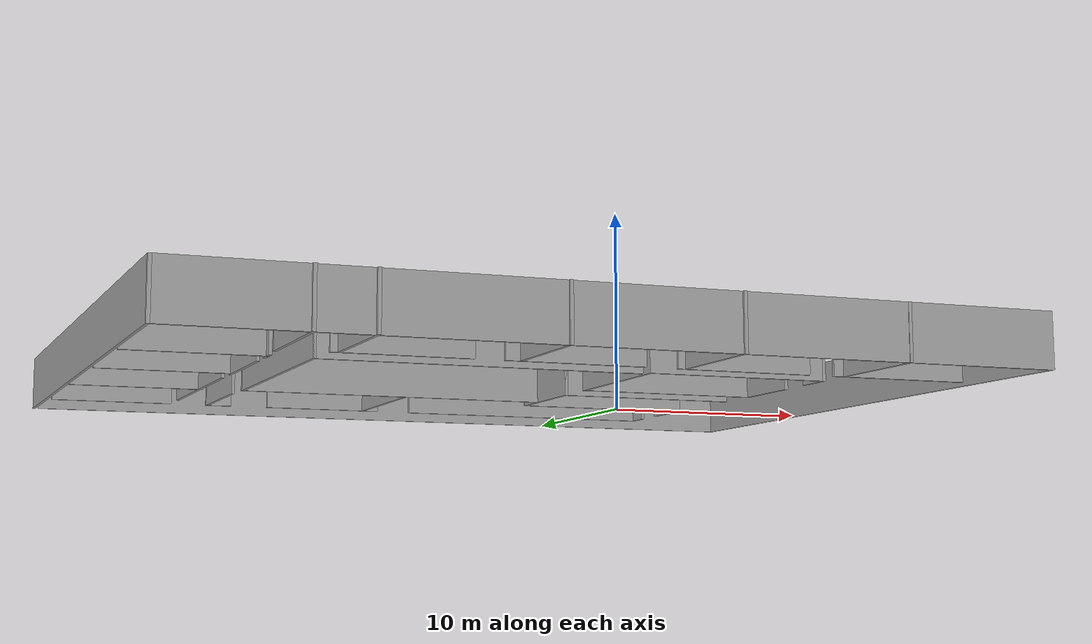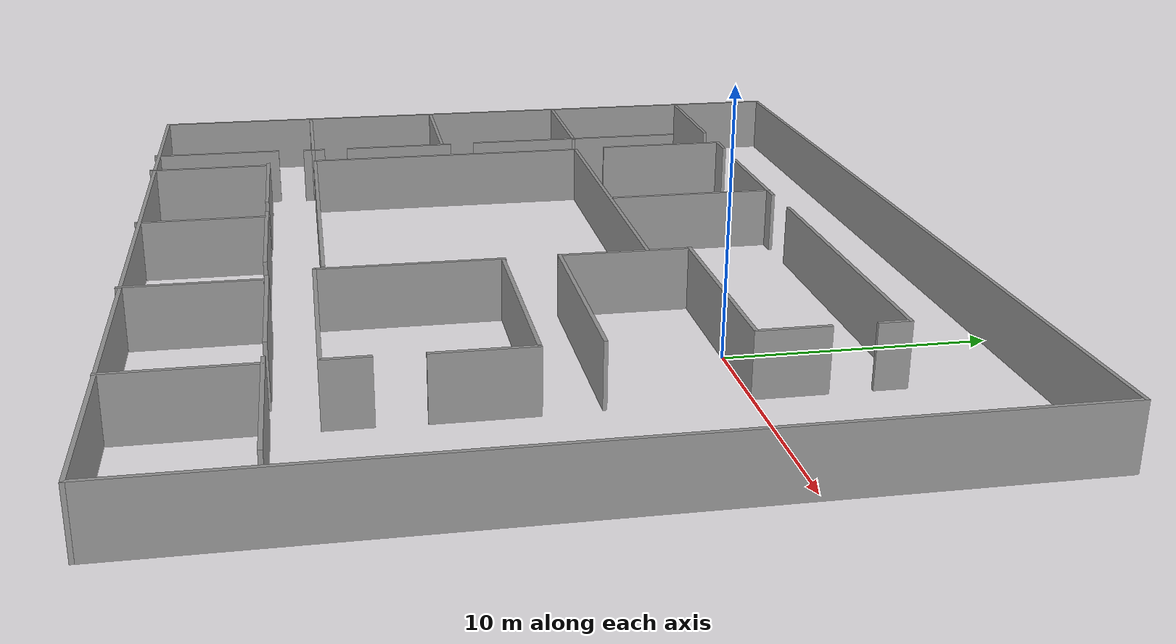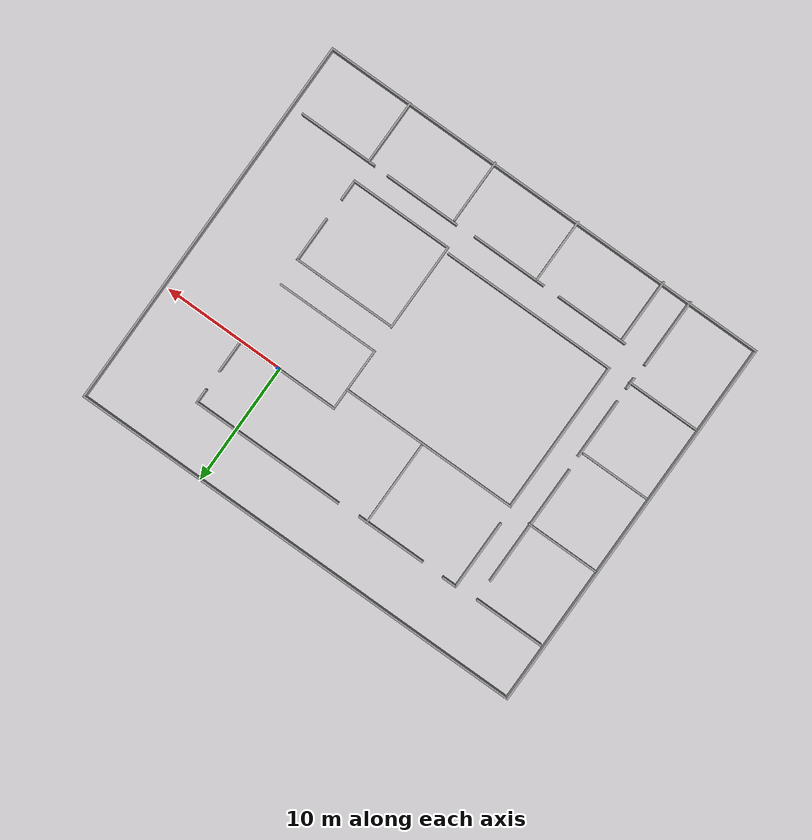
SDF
<?xml version='1.0'?>
<sdf version='1.7'>
  <model name='NMBE'>
    <pose>-8.57948 -5.7363 0 0 -0 0</pose>
    <link name='Wall_0'>
      <collision name='Wall_0_Collision'>
        <geometry>
          <box>
            <size>37.75 0.15 2.5</size>
          </box>
        </geometry>
        <pose>0 0 1.25 0 -0 0</pose>
      </collision>
      <visual name='Wall_0_Visual'>
        <pose>0 0 1.25 0 -0 0</pose>
        <geometry>
          <box>
            <size>37.75 0.15 2.5</size>
          </box>
        </geometry>
        <material>
          <script>
            <uri>file://media/materials/scripts/gazebo.material</uri>
            <name>Gazebo/Grey</name>
          </script>
          <ambient>1 1 1 1</ambient>
        </material>
        <meta>
          <layer>0</layer>
        </meta>
      </visual>
      <pose>0.125 15.6233 0 0 -0 0</pose>
    </link>
    <link name='Wall_1'>
      <collision name='Wall_1_Collision'>
        <geometry>
          <box>
            <size>31.25 0.15 2.5</size>
          </box>
        </geometry>
        <pose>0 0 1.25 0 -0 0</pose>
      </collision>
      <visual name='Wall_1_Visual'>
        <pose>0 0 1.25 0 -0 0</pose>
        <geometry>
          <box>
            <size>31.25 0.15 2.5</size>
          </box>
        </geometry>
        <material>
          <script>
            <uri>file://media/materials/scripts/gazebo.material</uri>
            <name>Gazebo/Grey</name>
          </script>
          <ambient>1 1 1 1</ambient>
        </material>
        <meta>
          <layer>0</layer>
        </meta>
      </visual>
      <pose>18.925 0.073336 0 0 -0 -1.5708</pose>
    </link>
    <link name='Wall_11'>
      <collision name='Wall_11_Collision'>
        <geometry>
          <box>
            <size>5.75 0.15 2.5</size>
          </box>
        </geometry>
        <pose>0 0 1.25 0 -0 0</pose>
      </collision>
      <visual name='Wall_11_Visual'>
        <pose>0 0 1.25 0 -0 0</pose>
        <geometry>
          <box>
            <size>5.75 0.15 2.5</size>
          </box>
        </geometry>
        <material>
          <script>
            <uri>file://media/materials/scripts/gazebo.material</uri>
            <name>Gazebo/Grey</name>
          </script>
          <ambient>1 1 1 1</ambient>
        </material>
        <meta>
          <layer>0</layer>
        </meta>
      </visual>
      <pose>-15.8691 -2.11714 0 0 -0 0</pose>
    </link>
    <link name='Wall_13'>
      <collision name='Wall_13_Collision'>
        <geometry>
          <box>
            <size>5.25 0.15 2.5</size>
          </box>
        </geometry>
        <pose>0 0 1.25 0 -0 0</pose>
      </collision>
      <visual name='Wall_13_Visual'>
        <pose>0 0 1.25 0 -0 0</pose>
        <geometry>
          <box>
            <size>5.25 0.15 2.5</size>
          </box>
        </geometry>
        <material>
          <script>
            <uri>file://media/materials/scripts/gazebo.material</uri>
            <name>Gazebo/Grey</name>
          </script>
          <ambient>1 1 1 1</ambient>
        </material>
        <meta>
          <layer>0</layer>
        </meta>
      </visual>
      <pose>12.0196 -12.952 0 0 -0 -1.5708</pose>
    </link>
    <link name='Wall_15'>
      <collision name='Wall_15_Collision'>
        <geometry>
          <box>
            <size>5.25 0.15 2.5</size>
          </box>
        </geometry>
        <pose>0 0 1.25 0 -0 0</pose>
      </collision>
      <visual name='Wall_15_Visual'>
        <pose>0 0 1.25 0 -0 0</pose>
        <geometry>
          <box>
            <size>5.25 0.15 2.5</size>
          </box>
        </geometry>
        <material>
          <script>
            <uri>file://media/materials/scripts/gazebo.material</uri>
            <name>Gazebo/Grey</name>
          </script>
          <ambient>1 1 1 1</ambient>
        </material>
        <meta>
          <layer>0</layer>
        </meta>
      </visual>
      <pose>4.45443 -13.0329 0 0 -0 -1.5708</pose>
    </link>
    <link name='Wall_17'>
      <collision name='Wall_17_Collision'>
        <geometry>
          <box>
            <size>5.25 0.15 2.5</size>
          </box>
        </geometry>
        <pose>0 0 1.25 0 -0 0</pose>
      </collision>
      <visual name='Wall_17_Visual'>
        <pose>0 0 1.25 0 -0 0</pose>
        <geometry>
          <box>
            <size>5.25 0.15 2.5</size>
          </box>
        </geometry>
        <material>
          <script>
            <uri>file://media/materials/scripts/gazebo.material</uri>
            <name>Gazebo/Grey</name>
          </script>
          <ambient>1 1 1 1</ambient>
        </material>
        <meta>
          <layer>0</layer>
        </meta>
      </visual>
      <pose>-2.94894 -13.0329 0 0 -0 -1.5708</pose>
    </link>
    <link name='Wall_19'>
      <collision name='Wall_19_Collision'>
        <geometry>
          <box>
            <size>5.25 0.15 2.5</size>
          </box>
        </geometry>
        <pose>0 0 1.25 0 -0 0</pose>
      </collision>
      <visual name='Wall_19_Visual'>
        <pose>0 0 1.25 0 -0 0</pose>
        <geometry>
          <box>
            <size>5.25 0.15 2.5</size>
          </box>
        </geometry>
        <material>
          <script>
            <uri>file://media/materials/scripts/gazebo.material</uri>
            <name>Gazebo/Grey</name>
          </script>
          <ambient>1 1 1 1</ambient>
        </material>
        <meta>
          <layer>0</layer>
        </meta>
      </visual>
      <pose>-10.5546 -13.0733 0 0 -0 -1.5708</pose>
    </link>
    <link name='Wall_2'>
      <collision name='Wall_2_Collision'>
        <geometry>
          <box>
            <size>38 0.15 2.5</size>
          </box>
        </geometry>
        <pose>0 0 1.25 0 -0 0</pose>
      </collision>
      <visual name='Wall_2_Visual'>
        <pose>0 0 1.25 0 -0 0</pose>
        <geometry>
          <box>
            <size>38 0.15 2.5</size>
          </box>
        </geometry>
        <material>
          <script>
            <uri>file://media/materials/scripts/gazebo.material</uri>
            <name>Gazebo/Grey</name>
          </script>
          <ambient>1 1 1 1</ambient>
        </material>
        <meta>
          <layer>0</layer>
        </meta>
      </visual>
      <pose>0 -15.4767 0 0 -0 3.14159</pose>
    </link>
    <link name='Wall_21'>
      <collision name='Wall_21_Collision'>
        <geometry>
          <box>
            <size>5.75 0.15 2.5</size>
          </box>
        </geometry>
        <pose>0 0 1.25 0 -0 0</pose>
      </collision>
      <visual name='Wall_21_Visual'>
        <pose>0 0 1.25 0 -0 0</pose>
        <geometry>
          <box>
            <size>5.75 0.15 2.5</size>
          </box>
        </geometry>
        <material>
          <script>
            <uri>file://media/materials/scripts/gazebo.material</uri>
            <name>Gazebo/Grey</name>
          </script>
          <ambient>1 1 1 1</ambient>
        </material>
        <meta>
          <layer>0</layer>
        </meta>
      </visual>
      <pose>-12.9819 -12.7974 0 0 -0 -1.5708</pose>
    </link>
    <link name='Wall_23'>
      <collision name='Wall_23_Collision'>
        <geometry>
          <box>
            <size>6 0.15 2.5</size>
          </box>
        </geometry>
        <pose>0 0 1.25 0 -0 0</pose>
      </collision>
      <visual name='Wall_23_Visual'>
        <pose>0 0 1.25 0 -0 0</pose>
        <geometry>
          <box>
            <size>6 0.15 2.5</size>
          </box>
        </geometry>
        <material>
          <script>
            <uri>file://media/materials/scripts/gazebo.material</uri>
            <name>Gazebo/Grey</name>
          </script>
          <ambient>1 1 1 1</ambient>
        </material>
        <meta>
          <layer>0</layer>
        </meta>
      </visual>
      <pose>-15.7612 -8.29828 0 0 -0 0</pose>
    </link>
    <link name='Wall_25'>
      <collision name='Wall_25_Collision'>
        <geometry>
          <box>
            <size>6.5 0.15 2.5</size>
          </box>
        </geometry>
        <pose>0 0 1.25 0 -0 0</pose>
      </collision>
      <visual name='Wall_25_Visual'>
        <pose>0 0 1.25 0 -0 0</pose>
        <geometry>
          <box>
            <size>6.5 0.15 2.5</size>
          </box>
        </geometry>
        <material>
          <script>
            <uri>file://media/materials/scripts/gazebo.material</uri>
            <name>Gazebo/Grey</name>
          </script>
          <ambient>1 1 1 1</ambient>
        </material>
        <meta>
          <layer>0</layer>
        </meta>
      </visual>
      <pose>14.7303 -10.3435 0 0 -0 0</pose>
    </link>
    <link name='Wall_27'>
      <collision name='Wall_27_Collision'>
        <geometry>
          <box>
            <size>6.25 0.15 2.5</size>
          </box>
        </geometry>
        <pose>0 0 1.25 0 -0 0</pose>
      </collision>
      <visual name='Wall_27_Visual'>
        <pose>0 0 1.25 0 -0 0</pose>
        <geometry>
          <box>
            <size>6.25 0.15 2.5</size>
          </box>
        </geometry>
        <material>
          <script>
            <uri>file://media/materials/scripts/gazebo.material</uri>
            <name>Gazebo/Grey</name>
          </script>
          <ambient>1 1 1 1</ambient>
        </material>
        <meta>
          <layer>0</layer>
        </meta>
      </visual>
      <pose>7.21071 -10.3031 0 0 -0 3.14159</pose>
    </link>
    <link name='Wall_29'>
      <collision name='Wall_29_Collision'>
        <geometry>
          <box>
            <size>6.25 0.15 2.5</size>
          </box>
        </geometry>
        <pose>0 0 1.25 0 -0 0</pose>
      </collision>
      <visual name='Wall_29_Visual'>
        <pose>0 0 1.25 0 -0 0</pose>
        <geometry>
          <box>
            <size>6.25 0.15 2.5</size>
          </box>
        </geometry>
        <material>
          <script>
            <uri>file://media/materials/scripts/gazebo.material</uri>
            <name>Gazebo/Grey</name>
          </script>
          <ambient>1 1 1 1</ambient>
        </material>
        <meta>
          <layer>0</layer>
        </meta>
      </visual>
      <pose>-0.525098 -10.384 0 0 -0 0</pose>
    </link>
    <link name='Wall_3'>
      <collision name='Wall_3_Collision'>
        <geometry>
          <box>
            <size>31.25 0.15 2.5</size>
          </box>
        </geometry>
        <pose>0 0 1.25 0 -0 0</pose>
      </collision>
      <visual name='Wall_3_Visual'>
        <pose>0 0 1.25 0 -0 0</pose>
        <geometry>
          <box>
            <size>31.25 0.15 2.5</size>
          </box>
        </geometry>
        <material>
          <script>
            <uri>file://media/materials/scripts/gazebo.material</uri>
            <name>Gazebo/Grey</name>
          </script>
          <ambient>1 1 1 1</ambient>
        </material>
        <meta>
          <layer>0</layer>
        </meta>
      </visual>
      <pose>-18.925 0.073336 0 0 -0 1.5708</pose>
    </link>
    <link name='Wall_31'>
      <collision name='Wall_31_Collision'>
        <geometry>
          <box>
            <size>6 0.15 2.5</size>
          </box>
        </geometry>
        <pose>0 0 1.25 0 -0 0</pose>
      </collision>
      <visual name='Wall_31_Visual'>
        <pose>0 0 1.25 0 -0 0</pose>
        <geometry>
          <box>
            <size>6 0.15 2.5</size>
          </box>
        </geometry>
        <material>
          <script>
            <uri>file://media/materials/scripts/gazebo.material</uri>
            <name>Gazebo/Grey</name>
          </script>
          <ambient>1 1 1 1</ambient>
        </material>
        <meta>
          <layer>0</layer>
        </meta>
      </visual>
      <pose>-7.9321 -10.384 0 0 -0 0</pose>
    </link>
    <link name='Wall_33'>
      <collision name='Wall_33_Collision'>
        <geometry>
          <box>
            <size>1 0.15 2.5</size>
          </box>
        </geometry>
        <pose>0 0 1.25 0 -0 0</pose>
      </collision>
      <visual name='Wall_33_Visual'>
        <pose>0 0 1.25 0 -0 0</pose>
        <geometry>
          <box>
            <size>1 0.15 2.5</size>
          </box>
        </geometry>
        <material>
          <script>
            <uri>file://media/materials/scripts/gazebo.material</uri>
            <name>Gazebo/Grey</name>
          </script>
          <ambient>1 1 1 1</ambient>
        </material>
        <meta>
          <layer>0</layer>
        </meta>
      </visual>
      <pose>-12.8799 -8.25984 0 0 -0 1.5708</pose>
    </link>
    <link name='Wall_35'>
      <collision name='Wall_35_Collision'>
        <geometry>
          <box>
            <size>5 0.15 2.5</size>
          </box>
        </geometry>
        <pose>0 0 1.25 0 -0 0</pose>
      </collision>
      <visual name='Wall_35_Visual'>
        <pose>0 0 1.25 0 -0 0</pose>
        <geometry>
          <box>
            <size>5 0.15 2.5</size>
          </box>
        </geometry>
        <material>
          <script>
            <uri>file://media/materials/scripts/gazebo.material</uri>
            <name>Gazebo/Grey</name>
          </script>
          <ambient>1 1 1 1</ambient>
        </material>
        <meta>
          <layer>0</layer>
        </meta>
      </visual>
      <pose>-12.8799 -4.1966 0 0 -0 1.5708</pose>
    </link>
    <link name='Wall_37'>
      <collision name='Wall_37_Collision'>
        <geometry>
          <box>
            <size>1.25 0.15 2.5</size>
          </box>
        </geometry>
        <pose>0 0 1.25 0 -0 0</pose>
      </collision>
      <visual name='Wall_37_Visual'>
        <pose>0 0 1.25 0 -0 0</pose>
        <geometry>
          <box>
            <size>1.25 0.15 2.5</size>
          </box>
        </geometry>
        <material>
          <script>
            <uri>file://media/materials/scripts/gazebo.material</uri>
            <name>Gazebo/Grey</name>
          </script>
          <ambient>1 1 1 1</ambient>
        </material>
        <meta>
          <layer>0</layer>
        </meta>
      </visual>
      <pose>-10.5824 11.1667 0 0 -0 0</pose>
    </link>
    <link name='Wall_39'>
      <collision name='Wall_39_Collision'>
        <geometry>
          <box>
            <size>5.75 0.15 2.5</size>
          </box>
        </geometry>
        <pose>0 0 1.25 0 -0 0</pose>
      </collision>
      <visual name='Wall_39_Visual'>
        <pose>0 0 1.25 0 -0 0</pose>
        <geometry>
          <box>
            <size>5.75 0.15 2.5</size>
          </box>
        </geometry>
        <material>
          <script>
            <uri>file://media/materials/scripts/gazebo.material</uri>
            <name>Gazebo/Grey</name>
          </script>
          <ambient>1 1 1 1</ambient>
        </material>
        <meta>
          <layer>0</layer>
        </meta>
      </visual>
      <pose>-5.27335 11.1055 0 0 -0 0</pose>
    </link>
    <link name='Wall_41'>
      <collision name='Wall_41_Collision'>
        <geometry>
          <box>
            <size>12.75 0.15 2.5</size>
          </box>
        </geometry>
        <pose>0 0 1.25 0 -0 0</pose>
      </collision>
      <visual name='Wall_41_Visual'>
        <pose>0 0 1.25 0 -0 0</pose>
        <geometry>
          <box>
            <size>12.75 0.15 2.5</size>
          </box>
        </geometry>
        <material>
          <script>
            <uri>file://media/materials/scripts/gazebo.material</uri>
            <name>Gazebo/Grey</name>
          </script>
          <ambient>1 1 1 1</ambient>
        </material>
        <meta>
          <layer>0</layer>
        </meta>
      </visual>
      <pose>5.69067 11.1973 0 0 -0 0</pose>
    </link>
    <link name='Wall_43'>
      <collision name='Wall_43_Collision'>
        <geometry>
          <box>
            <size>7 0.15 2.5</size>
          </box>
        </geometry>
        <pose>0 0 1.25 0 -0 0</pose>
      </collision>
      <visual name='Wall_43_Visual'>
        <pose>0 0 1.25 0 -0 0</pose>
        <geometry>
          <box>
            <size>7 0.15 2.5</size>
          </box>
        </geometry>
        <material>
          <script>
            <uri>file://media/materials/scripts/gazebo.material</uri>
            <name>Gazebo/Grey</name>
          </script>
          <ambient>1 1 1 1</ambient>
        </material>
        <meta>
          <layer>0</layer>
        </meta>
      </visual>
      <pose>-3.14832 7.71112 0 0 -0 -1.5708</pose>
    </link>
    <link name='Wall_45'>
      <collision name='Wall_45_Collision'>
        <geometry>
          <box>
            <size>14.75 0.15 2.5</size>
          </box>
        </geometry>
        <pose>0 0 1.25 0 -0 0</pose>
      </collision>
      <visual name='Wall_45_Visual'>
        <pose>0 0 1.25 0 -0 0</pose>
        <geometry>
          <box>
            <size>14.75 0.15 2.5</size>
          </box>
        </geometry>
        <material>
          <script>
            <uri>file://media/materials/scripts/gazebo.material</uri>
            <name>Gazebo/Grey</name>
          </script>
          <ambient>1 1 1 1</ambient>
        </material>
        <meta>
          <layer>0</layer>
        </meta>
      </visual>
      <pose>-3.67942 4.10037 0 0 -0 0</pose>
    </link>
    <link name='Wall_47'>
      <collision name='Wall_47_Collision'>
        <geometry>
          <box>
            <size>12.5 0.15 2.5</size>
          </box>
        </geometry>
        <pose>0 0 1.25 0 -0 0</pose>
      </collision>
      <visual name='Wall_47_Visual'>
        <pose>0 0 1.25 0 -0 0</pose>
        <geometry>
          <box>
            <size>12.5 0.15 2.5</size>
          </box>
        </geometry>
        <material>
          <script>
            <uri>file://media/materials/scripts/gazebo.material</uri>
            <name>Gazebo/Grey</name>
          </script>
          <ambient>1 1 1 1</ambient>
        </material>
        <meta>
          <layer>0</layer>
        </meta>
      </visual>
      <pose>-10.9794 -2.07463 0 0 -0 -1.5708</pose>
    </link>
    <link name='Wall_49'>
      <collision name='Wall_49_Collision'>
        <geometry>
          <box>
            <size>14.5 0.15 2.5</size>
          </box>
        </geometry>
        <pose>0 0 1.25 0 -0 0</pose>
      </collision>
      <visual name='Wall_49_Visual'>
        <pose>0 0 1.25 0 -0 0</pose>
        <geometry>
          <box>
            <size>14.5 0.15 2.5</size>
          </box>
        </geometry>
        <material>
          <script>
            <uri>file://media/materials/scripts/gazebo.material</uri>
            <name>Gazebo/Grey</name>
          </script>
          <ambient>1 1 1 1</ambient>
        </material>
        <meta>
          <layer>0</layer>
        </meta>
      </visual>
      <pose>-3.80442 -8.24963 0 0 -0 0</pose>
    </link>
    <link name='Wall_5'>
      <collision name='Wall_5_Collision'>
        <geometry>
          <box>
            <size>5.75 0.15 2.5</size>
          </box>
        </geometry>
        <pose>0 0 1.25 0 -0 0</pose>
      </collision>
      <visual name='Wall_5_Visual'>
        <pose>0 0 1.25 0 -0 0</pose>
        <geometry>
          <box>
            <size>5.75 0.15 2.5</size>
          </box>
        </geometry>
        <material>
          <script>
            <uri>file://media/materials/scripts/gazebo.material</uri>
            <name>Gazebo/Grey</name>
          </script>
          <ambient>1 1 1 1</ambient>
        </material>
        <meta>
          <layer>0</layer>
        </meta>
      </visual>
      <pose>-15.8156 11.0445 0 0 -0 0</pose>
    </link>
    <link name='Wall_51'>
      <collision name='Wall_51_Collision'>
        <geometry>
          <box>
            <size>1.25 0.15 2.5</size>
          </box>
        </geometry>
        <pose>0 0 1.25 0 -0 0</pose>
      </collision>
      <visual name='Wall_51_Visual'>
        <pose>0 0 1.25 0 -0 0</pose>
        <geometry>
          <box>
            <size>1.25 0.15 2.5</size>
          </box>
        </geometry>
        <material>
          <script>
            <uri>file://media/materials/scripts/gazebo.material</uri>
            <name>Gazebo/Grey</name>
          </script>
          <ambient>1 1 1 1</ambient>
        </material>
        <meta>
          <layer>0</layer>
        </meta>
      </visual>
      <pose>11.9907 10.6473 0 0 -0 -1.5708</pose>
    </link>
    <link name='Wall_53'>
      <collision name='Wall_53_Collision'>
        <geometry>
          <box>
            <size>2.75 0.15 2.5</size>
          </box>
        </geometry>
        <pose>0 0 1.25 0 -0 0</pose>
      </collision>
      <visual name='Wall_53_Visual'>
        <pose>0 0 1.25 0 -0 0</pose>
        <geometry>
          <box>
            <size>2.75 0.15 2.5</size>
          </box>
        </geometry>
        <material>
          <script>
            <uri>file://media/materials/scripts/gazebo.material</uri>
            <name>Gazebo/Grey</name>
          </script>
          <ambient>1 1 1 1</ambient>
        </material>
        <meta>
          <layer>0</layer>
        </meta>
      </visual>
      <pose>11.9864 7.06898 0 0 -0 -1.5708</pose>
    </link>
    <link name='Wall_60'>
      <collision name='Wall_60_Collision'>
        <geometry>
          <box>
            <size>8.5 0.15 2.5</size>
          </box>
        </geometry>
        <pose>0 0 1.25 0 -0 0</pose>
      </collision>
      <visual name='Wall_60_Visual'>
        <pose>0 0 1.25 0 -0 0</pose>
        <geometry>
          <box>
            <size>8.5 0.15 2.5</size>
          </box>
        </geometry>
        <material>
          <script>
            <uri>file://media/materials/scripts/gazebo.material</uri>
            <name>Gazebo/Grey</name>
          </script>
          <ambient>1 1 1 1</ambient>
        </material>
        <meta>
          <layer>0</layer>
        </meta>
      </visual>
      <pose>7.81136 5.76898 0 0 -0 3.14159</pose>
    </link>
    <link name='Wall_61'>
      <collision name='Wall_61_Collision'>
        <geometry>
          <box>
            <size>5.25 0.15 2.5</size>
          </box>
        </geometry>
        <pose>0 0 1.25 0 -0 0</pose>
      </collision>
      <visual name='Wall_61_Visual'>
        <pose>0 0 1.25 0 -0 0</pose>
        <geometry>
          <box>
            <size>5.25 0.15 2.5</size>
          </box>
        </geometry>
        <material>
          <script>
            <uri>file://media/materials/scripts/gazebo.material</uri>
            <name>Gazebo/Grey</name>
          </script>
          <ambient>1 1 1 1</ambient>
        </material>
        <meta>
          <layer>0</layer>
        </meta>
      </visual>
      <pose>3.63636 3.21898 0 0 -0 -1.5708</pose>
    </link>
    <link name='Wall_62'>
      <collision name='Wall_62_Collision'>
        <geometry>
          <box>
            <size>8.5 0.15 2.5</size>
          </box>
        </geometry>
        <pose>0 0 1.25 0 -0 0</pose>
      </collision>
      <visual name='Wall_62_Visual'>
        <pose>0 0 1.25 0 -0 0</pose>
        <geometry>
          <box>
            <size>8.5 0.15 2.5</size>
          </box>
        </geometry>
        <material>
          <script>
            <uri>file://media/materials/scripts/gazebo.material</uri>
            <name>Gazebo/Grey</name>
          </script>
          <ambient>1 1 1 1</ambient>
        </material>
        <meta>
          <layer>0</layer>
        </meta>
      </visual>
      <pose>7.81136 0.66898 0 0 -0 0</pose>
    </link>
    <link name='Wall_64'>
      <collision name='Wall_64_Collision'>
        <geometry>
          <box>
            <size>7.25 0.15 2.5</size>
          </box>
        </geometry>
        <pose>0 0 1.25 0 -0 0</pose>
      </collision>
      <visual name='Wall_64_Visual'>
        <pose>0 0 1.25 0 -0 0</pose>
        <geometry>
          <box>
            <size>7.25 0.15 2.5</size>
          </box>
        </geometry>
        <material>
          <script>
            <uri>file://media/materials/scripts/gazebo.material</uri>
            <name>Gazebo/Grey</name>
          </script>
          <ambient>1 1 1 1</ambient>
        </material>
        <meta>
          <layer>0</layer>
        </meta>
      </visual>
      <pose>3.67717 -5.02735 0 0 -0 -1.5708</pose>
    </link>
    <link name='Wall_65'>
      <collision name='Wall_65_Collision'>
        <geometry>
          <box>
            <size>8.5 0.15 2.5</size>
          </box>
        </geometry>
        <pose>0 0 1.25 0 -0 0</pose>
      </collision>
      <visual name='Wall_65_Visual'>
        <pose>0 0 1.25 0 -0 0</pose>
        <geometry>
          <box>
            <size>8.5 0.15 2.5</size>
          </box>
        </geometry>
        <material>
          <script>
            <uri>file://media/materials/scripts/gazebo.material</uri>
            <name>Gazebo/Grey</name>
          </script>
          <ambient>1 1 1 1</ambient>
        </material>
        <meta>
          <layer>0</layer>
        </meta>
      </visual>
      <pose>7.85217 -8.57735 0 0 -0 0</pose>
    </link>
    <link name='Wall_66'>
      <collision name='Wall_66_Collision'>
        <geometry>
          <box>
            <size>1.75 0.15 2.5</size>
          </box>
        </geometry>
        <pose>0 0 1.25 0 -0 0</pose>
      </collision>
      <visual name='Wall_66_Visual'>
        <pose>0 0 1.25 0 -0 0</pose>
        <geometry>
          <box>
            <size>1.75 0.15 2.5</size>
          </box>
        </geometry>
        <material>
          <script>
            <uri>file://media/materials/scripts/gazebo.material</uri>
            <name>Gazebo/Grey</name>
          </script>
          <ambient>1 1 1 1</ambient>
        </material>
        <meta>
          <layer>0</layer>
        </meta>
      </visual>
      <pose>12.0272 -7.77735 0 0 -0 1.5708</pose>
    </link>
    <link name='Wall_68'>
      <collision name='Wall_68_Collision'>
        <geometry>
          <box>
            <size>3.75 0.15 2.5</size>
          </box>
        </geometry>
        <pose>0 0 1.25 0 -0 0</pose>
      </collision>
      <visual name='Wall_68_Visual'>
        <pose>0 0 1.25 0 -0 0</pose>
        <geometry>
          <box>
            <size>3.75 0.15 2.5</size>
          </box>
        </geometry>
        <material>
          <script>
            <uri>file://media/materials/scripts/gazebo.material</uri>
            <name>Gazebo/Grey</name>
          </script>
          <ambient>1 1 1 1</ambient>
        </material>
        <meta>
          <layer>0</layer>
        </meta>
      </visual>
      <pose>12.0895 -3.31759 0 0 -0 1.5708</pose>
    </link>
    <link name='Wall_69'>
      <collision name='Wall_69_Collision'>
        <geometry>
          <box>
            <size>8.5 0.15 2.5</size>
          </box>
        </geometry>
        <pose>0 0 1.25 0 -0 0</pose>
      </collision>
      <visual name='Wall_69_Visual'>
        <pose>0 0 1.25 0 -0 0</pose>
        <geometry>
          <box>
            <size>8.5 0.15 2.5</size>
          </box>
        </geometry>
        <material>
          <script>
            <uri>file://media/materials/scripts/gazebo.material</uri>
            <name>Gazebo/Grey</name>
          </script>
          <ambient>1 1 1 1</ambient>
        </material>
        <meta>
          <layer>0</layer>
        </meta>
      </visual>
      <pose>7.91448 -1.51759 0 0 -0 3.14159</pose>
    </link>
    <link name='Wall_7'>
      <collision name='Wall_7_Collision'>
        <geometry>
          <box>
            <size>6 0.15 2.5</size>
          </box>
        </geometry>
        <pose>0 0 1.25 0 -0 0</pose>
      </collision>
      <visual name='Wall_7_Visual'>
        <pose>0 0 1.25 0 -0 0</pose>
        <geometry>
          <box>
            <size>6 0.15 2.5</size>
          </box>
        </geometry>
        <material>
          <script>
            <uri>file://media/materials/scripts/gazebo.material</uri>
            <name>Gazebo/Grey</name>
          </script>
          <ambient>1 1 1 1</ambient>
        </material>
        <meta>
          <layer>0</layer>
        </meta>
      </visual>
      <pose>-15.7976 4.35666 0 0 -0 0</pose>
    </link>
    <link name='Wall_71'>
      <collision name='Wall_71_Collision'>
        <geometry>
          <box>
            <size>5.75 0.15 2.5</size>
          </box>
        </geometry>
        <pose>0 0 1.25 0 -0 0</pose>
      </collision>
      <visual name='Wall_71_Visual'>
        <pose>0 0 1.25 0 -0 0</pose>
        <geometry>
          <box>
            <size>5.75 0.15 2.5</size>
          </box>
        </geometry>
        <material>
          <script>
            <uri>file://media/materials/scripts/gazebo.material</uri>
            <name>Gazebo/Grey</name>
          </script>
          <ambient>1 1 1 1</ambient>
        </material>
        <meta>
          <layer>0</layer>
        </meta>
      </visual>
      <pose>-11.1324 8.36671 0 0 -0 -1.5708</pose>
    </link>
    <link name='Wall_9'>
      <collision name='Wall_9_Collision'>
        <geometry>
          <box>
            <size>10 0.15 2.5</size>
          </box>
        </geometry>
        <pose>0 0 1.25 0 -0 0</pose>
      </collision>
      <visual name='Wall_9_Visual'>
        <pose>0 0 1.25 0 -0 0</pose>
        <geometry>
          <box>
            <size>10 0.15 2.5</size>
          </box>
        </geometry>
        <material>
          <script>
            <uri>file://media/materials/scripts/gazebo.material</uri>
            <name>Gazebo/Grey</name>
          </script>
          <ambient>1 1 1 1</ambient>
        </material>
        <meta>
          <layer>0</layer>
        </meta>
      </visual>
      <pose>-12.9443 4.4074 0 0 -0 -1.5708</pose>
    </link>
    <static>1</static>
  </model>
</sdf>
